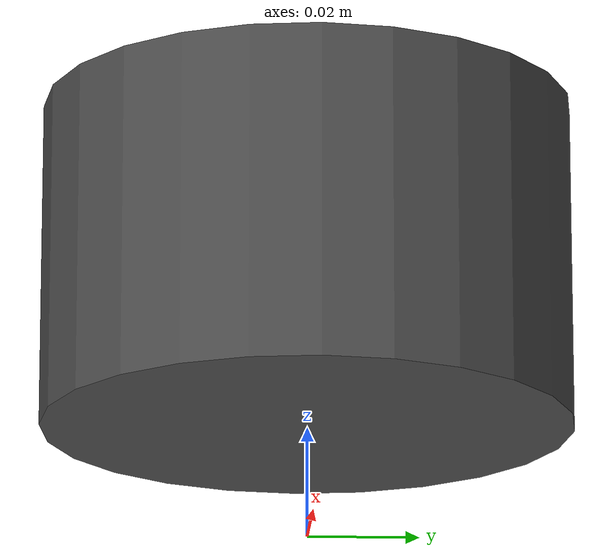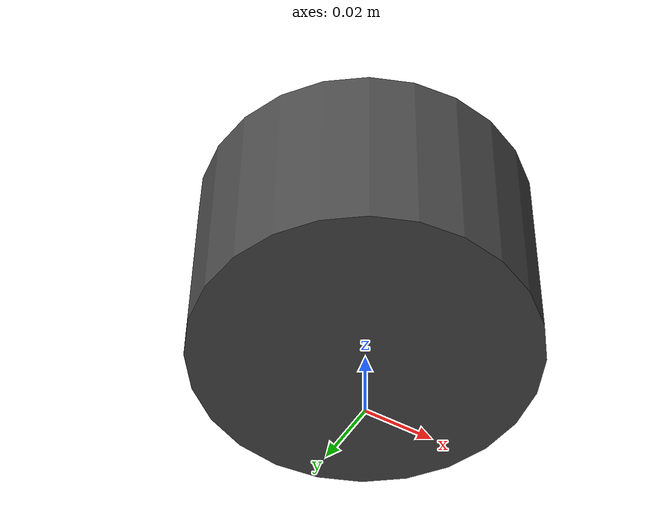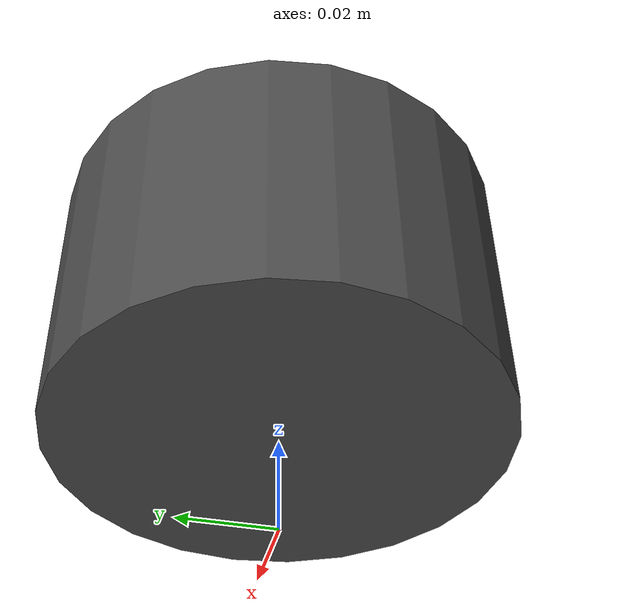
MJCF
<mujoco model="Mallet">
    <worldbody>
        <body name="left_mallet" pos="0 0 0.05">
            <inertial pos="0 0 0" mass="0.283" diaginertia="0.005 0.005 0.005"/>
            <joint name="left_mallet_x" type="slide" axis="1 0 0"/>
            <joint name="left_mallet_y" type="slide" axis="0 1 0"/>
            <geom name="left_mallet_geom" type="cylinder" size="0.04815 0.03" rgba="0.3 0.3 0.3 1"/>
        </body>
        <body name="right_mallet" pos="0 0 0.05">
            <inertial pos="0 0 0" mass="0.283" diaginertia="0.005 0.005 0.005"/>
            <joint name="right_mallet_x" type="slide" axis="1 0 0"/>
            <joint name="right_mallet_y" type="slide" axis="0 1 0"/>
            <geom name="right_mallet_geom" type="cylinder" size="0.04815 0.03" rgba="0.3 0.3 0.3 1"/>
        </body>
    </worldbody>
    <actuator>
        <motor name="left_mallet_x_motor" joint="left_mallet_x" gear="1"/>
        <motor name="left_mallet_y_motor" joint="left_mallet_y" gear="1"/>
        <motor name="right_mallet_x_motor" joint="right_mallet_x" gear="1"/>
        <motor name="right_mallet_y_motor" joint="right_mallet_y" gear="1"/>
    </actuator>
</mujoco>
